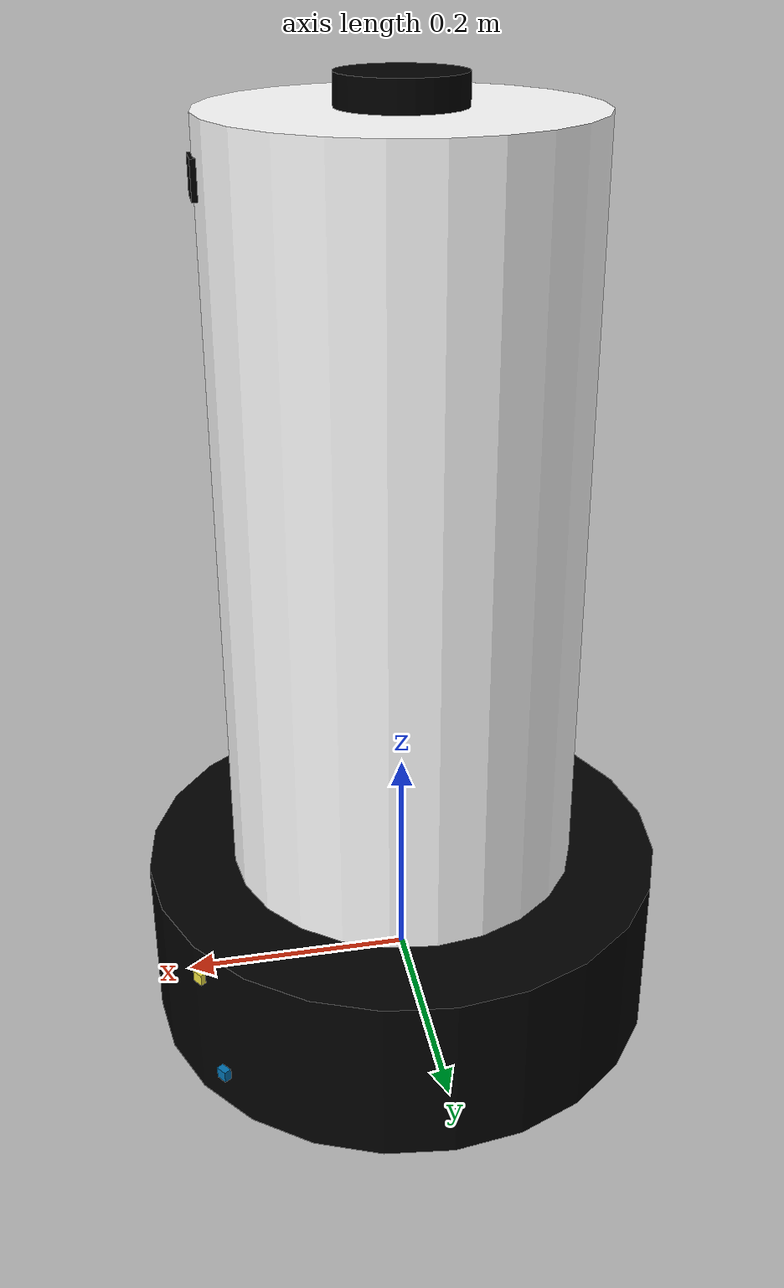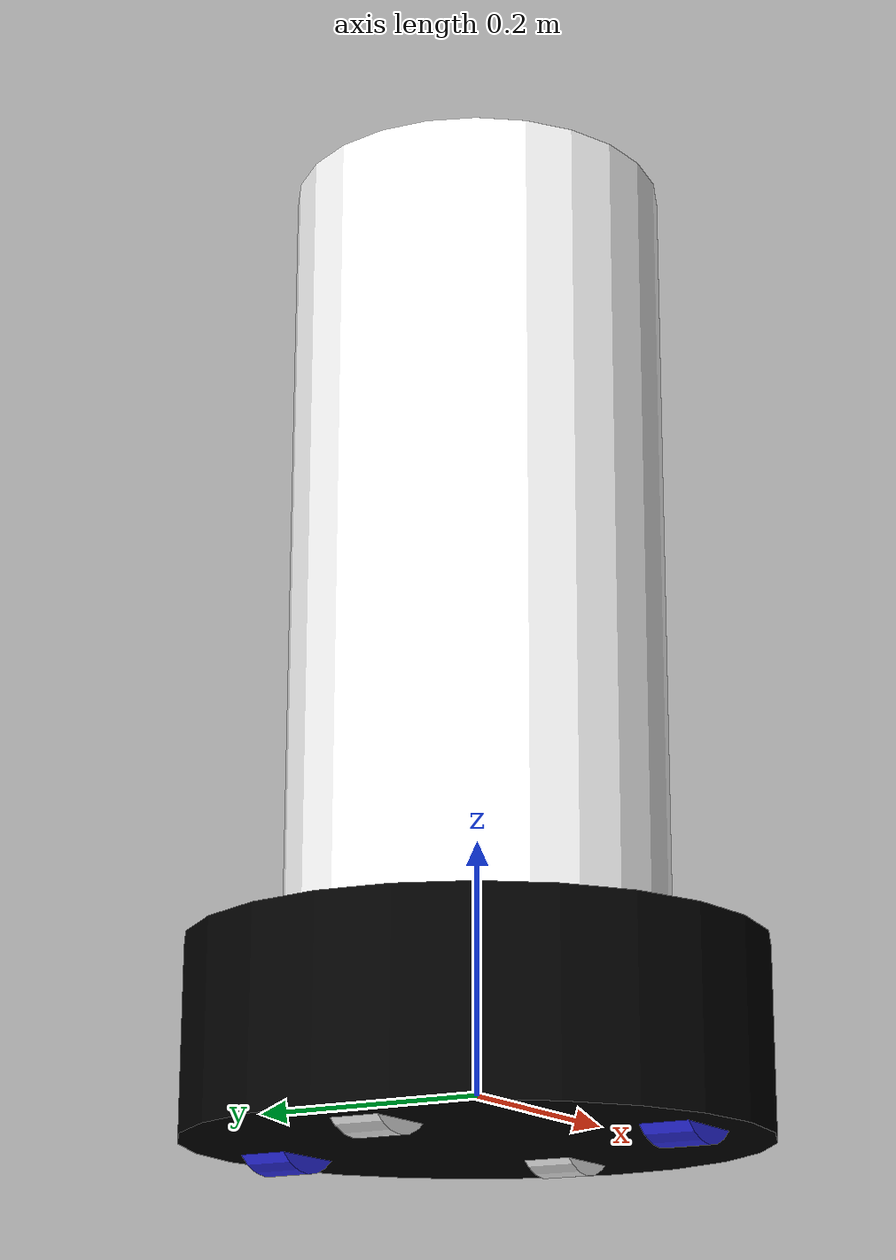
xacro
<?xml version="1.0"?>
<robot xmlns:xacro="http://www.ros.org/wiki/xacro"  name="robot">

    <xacro:arg name="use_ros2_control" default="false"/>
    <xacro:arg name="sim_mode" default="true"/>

    <xacro:include filename="robot_core.xacro" />

    <xacro:if value="$(arg use_ros2_control)">
        <xacro:include filename="ros2_control.xacro" />
    </xacro:if>
    <xacro:unless value="$(arg use_ros2_control)">
        <xacro:include filename="gazebo_control.xacro" />
    </xacro:unless>
    <xacro:include filename="lidar.xacro" />
    <xacro:include filename="camera.xacro" />

</robot>

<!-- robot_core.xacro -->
<robot xmlns:xacro="http://www.ros.org/wiki/xacro" >

    <xacro:include filename="inertial_macros.xacro"/>

    <material name="white">
        <color rgba="1 1 1 1" />
    </material>

    <material name="orange">
        <color rgba="1 0.3 0.1 1"/>
    </material>

    <material name="blue">
        <color rgba="0.2 0.2 1 1"/>
    </material>

    <material name="black">
        <color rgba="0 0 0 1"/>
    </material>

    <material name="red">
        <color rgba="1 0 0 1"/>
    </material>

     <!-- BASE LINK -->

    <link name="base_link">

    </link>

    <!-- BASE_FOOTPRINT LINK -->

    <joint name="base_footprint_joint" type="fixed">
        <parent link="base_link"/>
        <child link="base_footprint"/>
        <origin xyz="0 0 0" rpy="0 0 0"/>
    </joint>

    <link name="base_footprint">
    </link>

    <!-- CHASSIS LINK -->

    <joint name="chassis_joint" type="fixed">
        <parent link="base_link"/>
        <child link="chassis"/>
        <origin xyz="0 0 0"/>
    </joint>

    <link name="chassis">
        <visual>
            <origin xyz="0 0 0.060225"/>
            <geometry>
                <box size="0.28575 0.2794 0.1016"/>
            </geometry>
            <material name="white"/>
        </visual>
        <collision>
            <origin xyz="0 0 0.075"/>
            <geometry>
                <box size="0.28575 0.2794 0.1016"/>
            </geometry>
        </collision>
        <xacro:inertial_box mass="0.5" x="0.3" y="0.3" z="0.15">
            <origin xyz="0.15 0 0.075" rpy="0 0 0"/>
        </xacro:inertial_box>
    </link>
    <gazebo reference="chassis">
        <material>Gazebo/White</material>
    </gazebo>

    <!-- BODY BASE LINK -->

    <joint name="body_base_joint" type="fixed">
        <parent link="chassis"/>
        <child link="body_base"/>
        <origin xyz="0 0 0"/>
    </joint>

    <link name="body_base">
        <visual>
            <origin xyz="0 0 0.04"/>
            <geometry>
                <cylinder radius="0.2286" length="0.1524"/>
            </geometry>
            <material name="black"/>
        </visual>
        <collision>
            <origin xyz="0 0 0.060225"/>
            <geometry>
                <cylinder radius="0.2286" length="0.1524"/>
            </geometry>
        </collision>
        <xacro:inertial_cylinder mass="0.1" length="0.1524" radius="0.2286">
            <origin xyz="0 0 0" rpy="0 0 0"/>
        </xacro:inertial_cylinder>
    </link>
    <gazebo reference="body_base">
        <material>Gazebo/Black</material>
    </gazebo>

    <!-- BODY LINK -->

    <joint name="body_joint" type="fixed">
        <parent link="chassis"/>
        <child link="body"/>
        <origin xyz="0 0 0.1905"/>
    </joint>

    <link name="body">
        <visual>
            <origin xyz="0 0 0.1905"/>
            <geometry>
                <cylinder radius="0.1524" length="0.7493"/>
            </geometry>
            <material name="white"/>
        </visual>
        <collision>
            <origin xyz="0 0 0.1905"/>
            <geometry>
                <cylinder radius="0.1524" length="0.7493"/>
            </geometry>
        </collision>
        <xacro:inertial_cylinder mass="0.35" length="0.7493" radius="0.1524">
            <origin xyz="0 0 0" rpy="0 0 0"/>
        </xacro:inertial_cylinder>
    </link>
    <gazebo reference="body">
        <material>Gazebo/White</material>
    </gazebo>

    <!-- LEFT WHEEL LINK -->

    <joint name="left_wheel_joint" type="continuous">
        <parent link="base_link"/>
        <child link="left_wheel"/>
        <origin xyz="0 0.175 0" rpy="-1.57075 0 0" />
        <axis xyz="0 0 1"/>
    </joint>

    <link name="left_wheel">
        <visual>
            <geometry>
                <cylinder radius="0.05" length="0.04"/>
            </geometry>
            <material name="blue"/>
        </visual>
        <collision>
            <geometry>
                <cylinder radius="0.05" length="0.04"/>
            </geometry>
        </collision>
        <xacro:inertial_cylinder mass="0.1" length="0.04" radius="0.05">
            <origin xyz="0 0 0" rpy="0 0 0"/>
        </xacro:inertial_cylinder>
    </link>
    <gazebo reference="left_wheel">
        <material>Gazebo/Blue</material>
    </gazebo>

    <!-- RIGHT WHEEL LINK -->

    <joint name="right_wheel_joint" type="continuous">
        <parent link="base_link"/>
        <child link="right_wheel"/>
        <origin xyz="0 -0.175 0" rpy="1.57075 0 0" />
        <axis xyz="0 0 -1"/>
    </joint>

    <link name="right_wheel">
        <visual>
            <geometry>
                <cylinder radius="0.05" length="0.04"/>
            </geometry>
            <material name="blue"/>
        </visual>
        <collision>
            <geometry>
                <cylinder radius="0.05" length="0.04"/>
            </geometry>
        </collision>
        <xacro:inertial_cylinder mass="0.1" length="0.04" radius="0.05">
            <origin xyz="0 0 0" rpy="0 0 0"/>
        </xacro:inertial_cylinder>
    </link>
    <gazebo reference="right_wheel">
        <material>Gazebo/blue</material>
    </gazebo>

    <!-- FRONT CASTER WHEEL LINK -->

    <joint name="front_caster_base_joint" type="continuous">
        <parent link="base_link"/>
        <child link="front_caster_swivel"/>
        <origin xyz="0.14 0 0.0026" rpy="0 0 0" />
        <axis xyz="0 0 1"/>
    </joint>
    <link name="front_caster_swivel">
        <visual>
            <geometry>
                <cylinder radius="0.05" length="0.04"/>
            </geometry>
            <material name="white"/>
        </visual>
        <collision>
            <geometry>
                <cylinder radius="0.05" length="0.04"/>
            </geometry>
        </collision>
        <xacro:inertial_cylinder mass="0.1" length="0.04" radius="0.05">
            <origin xyz="0 0 0" rpy="0 0 0"/>
        </xacro:inertial_cylinder>
    </link>
    <gazebo reference="front_caster_swivel">
        <material>Gazebo/Blue</material>
        <mu1 value="0.001"/>
        <mu2 value="0.001"/>
    </gazebo>

    <joint name="front_caster_wheel_joint" type="continuous">
        <parent link="front_caster_swivel"/>
        <child link="front_caster_wheel"/>
        <origin xyz="0 0 0" rpy="1.57075 0 0" />
        <axis xyz="0 0 -1"/>
    </joint>
    <link name="front_caster_wheel">
        <visual>
            <geometry>
                <cylinder radius="0.05" length="0.04"/>
            </geometry>
            <material name="white"/>
        </visual>
        <collision>
            <geometry>
                <cylinder radius="0.05" length="0.04"/>
            </geometry>
        </collision>
        <xacro:inertial_cylinder mass="0.1" length="0.04" radius="0.05">
            <origin xyz="0 0 0" rpy="0 0 0"/>
        </xacro:inertial_cylinder>
    </link>
    <gazebo reference="front_caster_wheel">
        <material>Gazebo/Blue</material>
        <mu1 value="0.001"/>
        <mu2 value="0.001"/>
    </gazebo>

    <!-- REAR CASTER WHEEL LINK -->

    <joint name="rear_caster_base_joint" type="continuous">
        <parent link="base_link"/>
        <child link="rear_caster_swivel"/>
        <origin xyz="-0.142875 0 0.0026" rpy="0 0 0" />
        <axis xyz="0 0 1"/>
    </joint>
    <link name="rear_caster_swivel">
        <visual>
            <geometry>
                <cylinder radius="0.05" length="0.04"/>
            </geometry>
            <material name="white"/>
        </visual>
        <collision>
            <geometry>
                <cylinder radius="0.05" length="0.04"/>
            </geometry>
        </collision>
        <xacro:inertial_cylinder mass="0.1" length="0.04" radius="0.05">
            <origin xyz="0 0 0" rpy="0 0 0"/>
        </xacro:inertial_cylinder>
    </link>
    <gazebo reference="rear_caster_swivel">
        <material>Gazebo/Blue</material>
        <mu1 value="0.001"/>
        <mu2 value="0.001"/>
    </gazebo>

    <joint name="rear_caster_wheel_joint" type="continuous">
        <parent link="rear_caster_swivel"/>
        <child link="rear_caster_wheel"/>
        <origin xyz="0 0 0" rpy="1.57075 0 0" />
        <axis xyz="0 0 -1"/>
    </joint>
    <link name="rear_caster_wheel">
        <visual>
            <geometry>
                <cylinder radius="0.05" length="0.04"/>
            </geometry>
            <material name="white"/>
        </visual>
        <collision>
            <geometry>
                <cylinder radius="0.05" length="0.04"/>
            </geometry>
        </collision>
        <xacro:inertial_cylinder mass="0.1" length="0.04" radius="0.05">
            <origin xyz="0 0 0" rpy="0 0 0"/>
        </xacro:inertial_cylinder>
    </link>
    <gazebo reference="rear_caster_wheel">
        <material>Gazebo/Blue</material>
        <mu1 value="0.001"/>
        <mu2 value="0.001"/>
    </gazebo>

     <!--SONAR TOP LEFT FRONT-->
    <joint name="sonar_left_top_joint" type="fixed">
        <axis xyz="0 1 0" />
        <origin rpy="0 0 0.60" xyz="0.193 0.12 0.09" />
        <parent link="chassis"/>
        <child link="base_sonar_left_top"/>
    </joint>
    <link name="base_sonar_left_top">
        <collision>
        <origin xyz="0.001975 0 0.0038" rpy="0 0 0"/>
        <geometry>
            <box size="0.01 0.01 0.01"/>
        </geometry>
        </collision>
        <visual>
        <origin xyz="0 0 0" rpy="0 0 0"/>
        <geometry>
            <box size="0.01 0.01 0.01"/>
        </geometry>
        </visual>
        <inertial>
        <mass value="1e-5" />
        <origin xyz="0 0 0" rpy="0 0 0"/>
        <inertia ixx="1e-6" ixy="0" ixz="0" iyy="1e-6" iyz="0" izz="1e-6" />
        </inertial>
    </link>
    <gazebo reference="base_sonar_left_top">
        <sensor type="ray" name="TeraRanger">
            <pose>0 0 0 0 0 0</pose>
            <visualize>true</visualize>
            <update_rate>50</update_rate>
            <ray>
                <scan>
                    <horizontal>
                    <samples>10</samples>
                    <resolution>1</resolution>
                    <min_angle>-0.14835</min_angle>
                    <max_angle>0.14835</max_angle>
                    </horizontal>
                    <vertical>
                    <samples>10</samples>
                    <resolution>1</resolution>
                    <min_angle>-0.14835</min_angle>
                    <max_angle>0.14835</max_angle>
                    </vertical>
                </scan>
                <range>
                    <min>0.01</min>
                    <max>2</max>
                    <resolution>0.02</resolution>
                </range>
            </ray>
            <plugin filename="libgazebo_ros_range.so" name="base_sonar_left_top">
                <gaussianNoise>0.005</gaussianNoise>
                <alwaysOn>true</alwaysOn>
                <updateRate>50</updateRate>
                <topicName>sensor_msgs/range_left_top</topicName>
                <frameName>sonar_base</frameName>
                <radiation>ultrasound</radiation>
                <fov>0.2967</fov>
            </plugin>
        </sensor>
    </gazebo>

<!-- LEFT SONAR -->
    <joint name="sonar_left_bottom_joint" type="fixed">
        <axis xyz="0 1 0" />
        <origin rpy="0 0 0.60" xyz="0.18 0.14 0.00001" />
        <parent link="chassis"/>
        <child link="base_sonar_left_bottom"/>
    </joint>
    <link name="base_sonar_left_bottom">
        <collision>
        <origin xyz="0 0 0" rpy="0 0 0"/>
        <geometry>
            <box size="0.01 0.01 0.01"/>
        </geometry>
        </collision>
        <visual>
        <origin xyz="0 0 0" rpy="0 0 0"/>
        <geometry>
            <box size="0.01 0.01 0.01"/>
        </geometry>
        </visual>
        <inertial>
        <mass value="1e-5" />
        <origin xyz="0 0 0" rpy="0 0 0"/>
        <inertia ixx="1e-6" ixy="0" ixz="0" iyy="1e-6" iyz="0" izz="1e-6" />
        </inertial>
    </link>
    <gazebo reference="base_sonar_left_bottom">
        <sensor type="ray" name="TeraRanger">
            <pose>0 0 0 0 0 0</pose>
            <visualize>true</visualize>
            <update_rate>50</update_rate>
            <ray>
                <scan>
                    <horizontal>
                    <samples>10</samples>
                    <resolution>1</resolution>
                    <min_angle>-0.14835</min_angle>
                    <max_angle>0.14835</max_angle>
                    </horizontal>
                    <vertical>
                    <samples>10</samples>
                    <resolution>1</resolution>
                    <min_angle>-0.14835</min_angle>
                    <max_angle>0.14835</max_angle>
                    </vertical>
                </scan>
                <range>
                    <min>0.01</min>
                    <max>2</max>
                    <resolution>0.02</resolution>
                </range>
            </ray>
            <plugin filename="libgazebo_ros_range.so" name="base_sonar_left_bottom">
                <gaussianNoise>0.005</gaussianNoise>
                <alwaysOn>true</alwaysOn>
                <updateRate>50</updateRate>
                <topicName>sensor_msgs/range_left_bottom</topicName>
                <frameName>sonar_base</frameName>
                <radiation>ultrasound</radiation>
                <fov>0.2967</fov>
            </plugin>
        </sensor>
    </gazebo>

<!-- RIGHT SONAR  -->
    <joint name="sonar_right_top_joint" type="fixed">
        <axis xyz="0 1 0" />
        <origin rpy="0 0 -0.60" xyz="0.193 -0.12 0.09" />
        <parent link="chassis"/>
        <child link="base_sonar_right_top"/>
    </joint>
    <link name="base_sonar_right_top">
        <collision>
        <origin xyz="0 0 0" rpy="0 0 0"/>
        <geometry>
            <box size="0.01 0.01 0.01"/>
        </geometry>
        </collision>
        <visual>
        <origin xyz="0 0 0" rpy="0 0 0"/>
        <geometry>
            <box size="0.01 0.01 0.01"/>
        </geometry>
        </visual>
        <inertial>
        <mass value="1e-5" />
        <origin xyz="0 0 0" rpy="0 0 0"/>
        <inertia ixx="1e-6" ixy="0" ixz="0" iyy="1e-6" iyz="0" izz="1e-6" />
        </inertial>
    </link>
    <gazebo reference="base_sonar_right_top">
        <sensor type="ray" name="TeraRanger">
            <pose>0 0 0 0 0 0</pose>
            <visualize>true</visualize>
            <update_rate>50</update_rate>
            <ray>
                <scan>
                    <horizontal>
                    <samples>10</samples>
                    <resolution>1</resolution>
                    <min_angle>-0.14835</min_angle>
                    <max_angle>0.14835</max_angle>
                    </horizontal>
                    <vertical>
                    <samples>10</samples>
                    <resolution>1</resolution>
                    <min_angle>-0.14835</min_angle>
                    <max_angle>0.14835</max_angle>
                    </vertical>
                </scan>
                <range>
                    <min>0.01</min>
                    <max>2</max>
                    <resolution>0.02</resolution>
                </range>
            </ray>
            <plugin filename="libgazebo_ros_range.so" name="base_sonar_right_top">
                <gaussianNoise>0.005</gaussianNoise>
                <alwaysOn>true</alwaysOn>
                <updateRate>50</updateRate>
                <topicName>sensor_msgs/range_right_top</topicName>
                <frameName>sonar_base</frameName>
                <radiation>ultrasound</radiation>
                <fov>0.2967</fov>
            </plugin>
        </sensor>
    </gazebo>

<!-- REAR SONAR  -->
    <joint name="sonar_right_bottom_joint" type="fixed">
        <axis xyz="0 1 0" />
        <origin rpy="0 0 -0.60" xyz="0.18 -0.14 0.00001" />
        <parent link="chassis"/>
        <child link="base_sonar_right_bottom"/>
    </joint>
    <link name="base_sonar_right_bottom">
        <collision>
        <origin xyz="0 0 0" rpy="0 0 0"/>
        <geometry>
            <box size="0.01 0.01 0.01"/>
        </geometry>
        </collision>
        <visual>
        <origin xyz="0 0 0" rpy="0 0 0"/>
        <geometry>
            <box size="0.01 0.01 0.01"/>
        </geometry>
        </visual>
        <inertial>
        <mass value="1e-5" />
        <origin xyz="0 0 0" rpy="0 0 0"/>
        <inertia ixx="1e-6" ixy="0" ixz="0" iyy="1e-6" iyz="0" izz="1e-6" />
        </inertial>
    </link>
    <gazebo reference="base_sonar_right_bottom">
        <sensor type="ray" name="TeraRanger">
            <pose>0 0 0 0 0 0</pose>
            <visualize>true</visualize>
            <update_rate>50</update_rate>
            <ray>
                <scan>
                    <horizontal>
                    <samples>10</samples>
                    <resolution>1</resolution>
                    <min_angle>-0.14835</min_angle>
                    <max_angle>0.14835</max_angle>
                    </horizontal>
                    <vertical>
                    <samples>10</samples>
                    <resolution>1</resolution>
                    <min_angle>-0.14835</min_angle>
                    <max_angle>0.14835</max_angle>
                    </vertical>
                </scan>
                <range>
                    <min>0.01</min>
                    <max>2</max>
                    <resolution>0.02</resolution>
                </range>
            </ray>
            <plugin filename="libgazebo_ros_range.so" name="base_sonar_right_bottom">
                <gaussianNoise>0.005</gaussianNoise>
                <alwaysOn>true</alwaysOn>
                <updateRate>50</updateRate>
                <output_type>sensor_msgs/range_right_bottom</output_type>
                <radiation_type>ultrasound</radiation_type>
                <frame_name>sonar_base</frame_name>
                <fov>0.2967</fov>
            </plugin>
        </sensor>
    </gazebo>
</robot>

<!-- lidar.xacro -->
<robot xmlns:xacro="http://www.ros.org/wiki/xacro" >

    <joint name="laser_joint" type="fixed">
        <parent link="chassis"/>
        <child link="laser_frame"/>
        <origin xyz="0 0 0.76" rpy="0 0 0"/>
    </joint>

    <link name="laser_frame">
        <visual>
            <geometry>
                <cylinder radius="0.05" length="0.04"/>
            </geometry>
            <material name="black"/>
        </visual>
        <collision>
            <geometry>
                <cylinder radius="0.05" length="0.04"/>
            </geometry>
        </collision>
        <xacro:inertial_cylinder mass="0.1" length="0.04" radius="0.05">
            <origin xyz="0 0 0" rpy="0 0 0"/>
        </xacro:inertial_cylinder>
    </link>

    <gazebo reference="laser_frame">
        <material>Gazebo/Black</material>

        <sensor name="laser" type="ray">
            <pose> 0 0 0 0 0 0 </pose>
            <visualize>true</visualize>
            <update_rate>10</update_rate>
            <ray>
                <scan>
                    <horizontal>
                        <samples>360</samples>
                        <min_angle>-3.14</min_angle>
                        <max_angle>3.14</max_angle>
                    </horizontal>
                </scan>
                <range>
                    <min>0.3</min>
                    <max>12</max>
                </range>
            </ray>
            <plugin name="laser_controller" filename="libgazebo_ros_ray_sensor.so">
                <ros>
                    <argument>~/out:=scan</argument>
                </ros>
                <output_type>sensor_msgs/LaserScan</output_type>
                <frame_name>laser_frame</frame_name>
            </plugin>
        </sensor>
    </gazebo>

</robot>

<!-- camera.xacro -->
<robot xmlns:xacro="http://www.ros.org/wiki/xacro" >

    <joint name="camera_joint" type="fixed">
        <parent link="chassis"/>
        <child link="camera_link"/>
        <origin xyz="0.15 0 0.7112" rpy="0 0 0"/>
    </joint>

    <link name="camera_link">
        <visual>
            <geometry>
                <box size="0.010 0.03 0.03"/>
            </geometry>
            <material name="black"/>
        </visual>
    </link>

    <joint name="camera_optical_joint" type="fixed">
        <parent link="camera_link"/>
        <child link="camera_link_optical"/>
        <origin xyz="0 0 0" rpy="${-pi/2} 0 ${-pi/2}"/>
    </joint>

    <link name="camera_link_optical"></link>

    <gazebo reference="camera_link">
        <material>Gazebo/Black</material>

        <sensor name="camera" type="camera">
            <pose> 0 0 0 0 0 0 </pose>
            <visualize>true</visualize>
            <update_rate>10</update_rate>
            <camera>
                <horizontal_fov>1.089</horizontal_fov>
                <image>
                    <format>R8G8B8</format>
                    <width>640</width>
                    <height>480</height>
                </image>
                <clip>
                    <near>0.05</near>
                    <far>8.0</far>
                </clip>
            </camera>
            <plugin name="camera_controller" filename="libgazebo_ros_camera.so">
                <frame_name>camera_link_optical</frame_name>
            </plugin>
        </sensor>
    </gazebo>

</robot>
